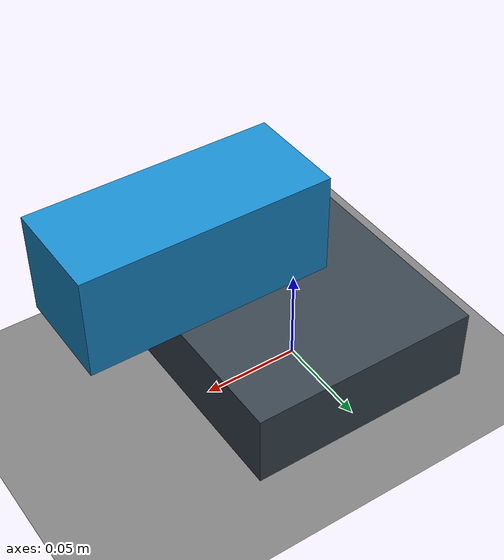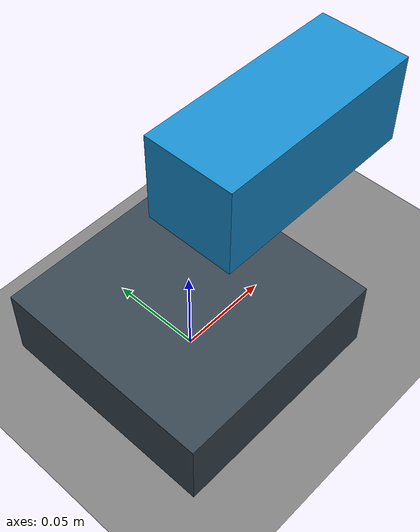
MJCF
<?xml version="1.0" encoding="UTF-8"?>
<mujoco model="M1 prismatic joint probe">
  <compiler angle="radian" autolimits="true"/>
  <option timestep="0.002" gravity="0 0 0" integrator="implicitfast"/>
  <worldbody>
    <geom name="floor" type="plane" size="1 1 0.1" contype="0" conaffinity="0"/>
    <body name="base" pos="0 0 0">
      <geom name="base_geom" type="box" pos="0 0 0.02" size="0.06 0.06 0.02" rgba="0.22 0.27 0.31 1"/>
      <body name="slide_link" pos="0 0 0.10">
        <joint name="probe_slide" type="slide" axis="1 0 0" range="0 0.15" limited="true" damping="12"/>
        <geom name="slide_geom" type="box" pos="0.06 0 0" size="0.06 0.025 0.025" mass="0.25" rgba="0.1 0.55 0.8 1"/>
      </body>
    </body>
  </worldbody>
  <actuator>
    <position name="slide_position" joint="probe_slide" kp="500" kv="30" ctrlrange="0 0.15" forcelimited="true" forcerange="-80 80"/>
  </actuator>
</mujoco>
